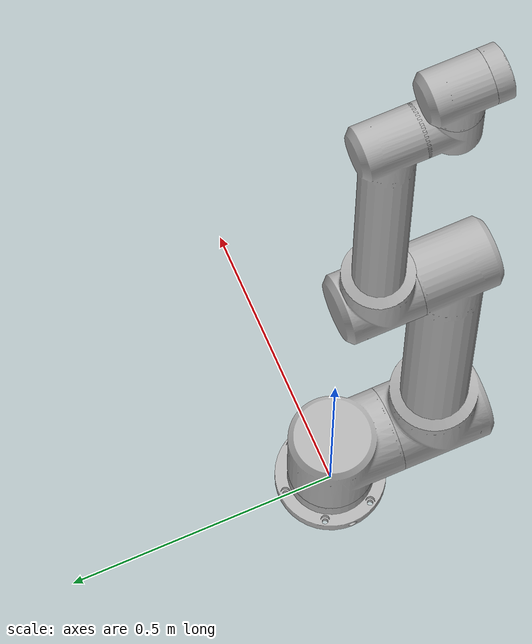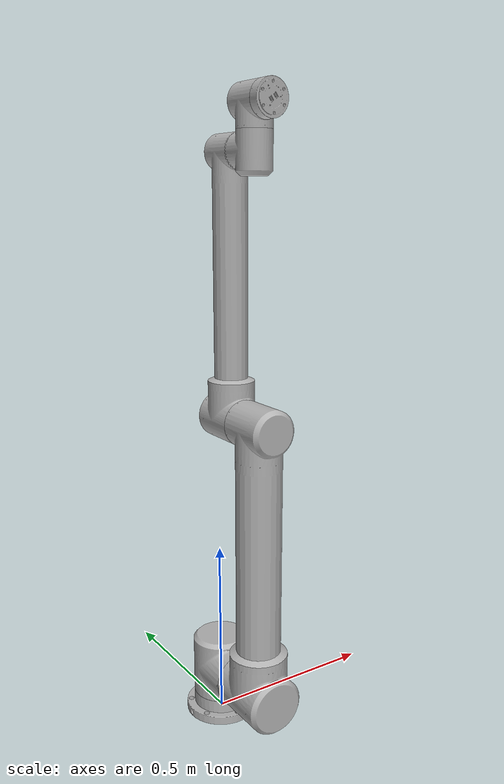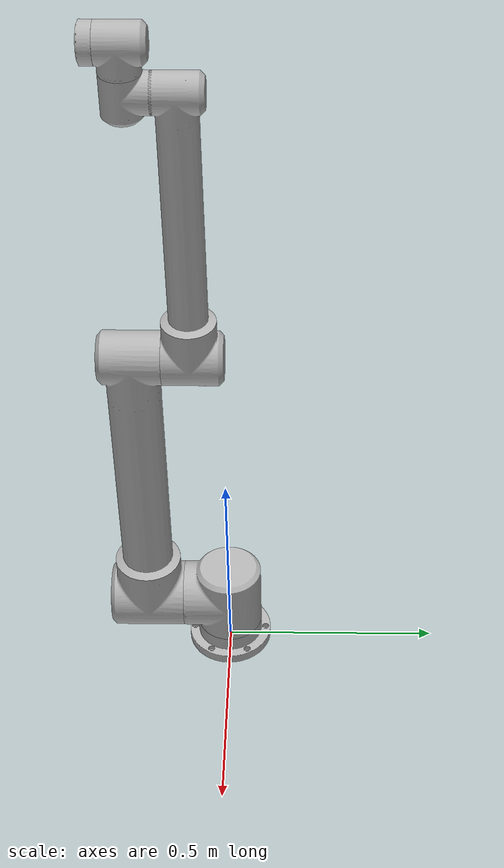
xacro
<?xml version='1.0' encoding='utf-8'?>
<robot xmlns:xacro="http://ros.org/wiki/xacro" name="utra6_1500">

  <xacro:arg name="prefix" default=""/>
  <xacro:arg name="ros_namespace" default="utra6_1500"/>
  <xacro:arg name="limited" default="false"/>
  <xacro:arg name="effort_control" default="false"/>
  <xacro:arg name="attach_to_world" default="true"/>
  <xacro:arg name="add_realsense_d435i" default="false"/>

    <!-- utra6_1500 -->
    <xacro:include filename="$(find arm_description)/urdf/utra6_1500.urdf.xacro" />

    <xacro:if value="$(arg attach_to_world)">
      <link name="world" />
    </xacro:if>

    <joint name="$(arg prefix)world_joint" type="fixed">
      <parent link="world" />
      <child link = "$(arg prefix)base_link" />
      <origin xyz="0 0 0" rpy="0 0 0" />
    </joint>

    <xacro:if value="$(arg limited)">
      <xacro:utra6_1500_urdf prefix="$(arg prefix)"
        joint1_lower_limit="${-2.0*pi+0.02}" joint1_upper_limit="${2.0*pi-0.02}"
        joint2_lower_limit="${-2.0*pi+0.02}" joint2_upper_limit="${2.0*pi-0.02}"
        joint3_lower_limit="${-2.9578+0.02}" joint3_upper_limit="${2.9578-0.02}"
        joint4_lower_limit="${-2.0*pi+0.02}" joint4_upper_limit="${2.0*pi-0.02}"
        joint5_lower_limit="${-2.0*pi+0.02}" joint5_upper_limit="${2.0*pi-0.02}"
        joint6_lower_limit="${-2.0*pi+0.02}" joint6_upper_limit="${2.0*pi-0.02}"/>
    </xacro:if>
    <xacro:unless value="$(arg limited)">
      <xacro:utra6_1500_urdf prefix="$(arg prefix)"/>
    </xacro:unless>

  <xacro:include filename="$(find arm_description)/urdf/transmission.xacro" />

  <xacro:transmission_block joint_name="$(arg prefix)joint1"/>
  <xacro:transmission_block joint_name="$(arg prefix)joint2"/>
  <xacro:transmission_block joint_name="$(arg prefix)joint3"/>
  <xacro:transmission_block joint_name="$(arg prefix)joint4"/>
  <xacro:transmission_block joint_name="$(arg prefix)joint5"/>
  <xacro:transmission_block joint_name="$(arg prefix)joint6"/>

  <xacro:include filename="$(find arm_description)/urdf/utra6_1500_common.gazebo.xacro" />

  <xacro:if value="$(arg add_realsense_d435i)" >
    <link name="$(arg prefix)d435i">
        <inertial>
          <origin xyz="0 0 0" rpy="0 0 0" />
          <mass value="0.00001" />
          <inertia ixx="0" ixy="0" ixz="0" iyy="0" iyz="0" izz="0" />
        </inertial>
        <visual>
          <origin xyz="0 0 0" rpy="0 0 0" />
          <geometry> <mesh filename="package://arm_description/meshes/d435i/d435i.STL" /> </geometry>
          <material name="Silver"> <color rgba="0.7 0.7 0.7 1.0"/> </material>
        </visual>
        <collision>
          <origin xyz="0 0 0" rpy="0 0 0" />
          <geometry> <mesh filename="package://arm_description/meshes/d435i/d435i.STL" /> </geometry>
        </collision>
    </link>
    <joint name="$(arg prefix)d435i_joint" type="fixed">
        <parent link="$(arg prefix)link_6"/>
        <child link="$(arg prefix)d435i"/>
        <origin xyz="0 0 0" rpy="0 -${pi/2} ${pi/2}"/>
    </joint>
  </xacro:if>

</robot>

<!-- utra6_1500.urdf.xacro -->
<robot xmlns:xacro="http://ros.org/wiki/xacro">

  <xacro:macro name="utra6_1500_urdf" params="prefix
    joint1_lower_limit:=${-2.0*pi+0.02} joint1_upper_limit:=${2.0*pi-0.02}
    joint2_lower_limit:=${-2.0*pi+0.02} joint2_upper_limit:=${2.0*pi-0.02}
    joint3_lower_limit:=${-2.9578+0.02} joint3_upper_limit:=${2.9578-0.02}
    joint4_lower_limit:=${-2.0*pi+0.02} joint4_upper_limit:=${2.0*pi-0.02}
    joint5_lower_limit:=${-2.0*pi+0.02} joint5_upper_limit:=${2.0*pi-0.02}
    joint6_lower_limit:=${-2.0*pi+0.02} joint6_upper_limit:=${2.0*pi-0.02}">

    <material name="Black">  <color rgba="0.0 0.0 0.0 1.0"/> </material>
    <material name="Red">    <color rgba="0.8 0.0 0.0 1.0"/> </material>
    <material name="White">  <color rgba="1.0 1.0 1.0 1.0"/> </material>
    <material name="Silver"> <color rgba="0.7 0.7 0.7 1.0"/> </material>

    <xacro:macro name="origin_joint1"> <origin xyz="0 0 0" rpy="0 0 0" /> </xacro:macro>
    <xacro:macro name="origin_joint2"> <origin xyz="0 0 0.1455" rpy="0 0 0" /> </xacro:macro>
    <xacro:macro name="origin_joint3"> <origin xyz="0 0 0.7455" rpy="0 0 0" /> </xacro:macro>
    <xacro:macro name="origin_joint4"> <origin xyz="0 0 0.650" rpy="0 0 0" /> </xacro:macro>
    <xacro:macro name="origin_joint5"> <origin xyz="0 -0.1695 0.1045" rpy="0 0 0" /> </xacro:macro>
    <xacro:macro name="origin_joint6"> <origin xyz="0 -0.0745 0" rpy="${0.5*pi} 0 0" /> </xacro:macro>

    <xacro:macro name="origin_visual_base">   <origin xyz="0 0 0" rpy="0 0 0" /> </xacro:macro>
    <xacro:macro name="origin_visual_link_1"> <origin xyz="0 0 0" rpy="0 0 0" /> </xacro:macro>
    <xacro:macro name="origin_visual_link_2"> <origin xyz="0 0 0" rpy="0 0 0" /> </xacro:macro>
    <xacro:macro name="origin_visual_link_3"> <origin xyz="0 0 0" rpy="0 0 0" /> </xacro:macro>
    <xacro:macro name="origin_visual_link_4"> <origin xyz="0 0 0" rpy="0 0 0" /> </xacro:macro>
    <xacro:macro name="origin_visual_link_5"> <origin xyz="0 0 0" rpy="0 0 0" /> </xacro:macro>
    <xacro:macro name="origin_visual_link_6"> <origin xyz="0 0 0" rpy="0 0 0" /> </xacro:macro>

    <xacro:macro name="origin_inertial_base">   <origin xyz="0 0 0" rpy="0 0 0" /> </xacro:macro>
    <xacro:macro name="origin_inertial_link_1"> <origin xyz="0 0 0" rpy="0 0 0" /> </xacro:macro>
    <xacro:macro name="origin_inertial_link_2"> <origin xyz="0 0 0" rpy="0 0 0" /> </xacro:macro>
    <xacro:macro name="origin_inertial_link_3"> <origin xyz="0 0 0" rpy="0 0 0" /> </xacro:macro>
    <xacro:macro name="origin_inertial_link_4"> <origin xyz="0 0 0" rpy="0 0 0" /> </xacro:macro>
    <xacro:macro name="origin_inertial_link_5"> <origin xyz="0 0 0" rpy="0 0 0" /> </xacro:macro>
    <xacro:macro name="origin_inertial_link_6"> <origin xyz="0 0 0" rpy="0 0 0" /> </xacro:macro>

    <xacro:macro name="inertia_base">   <inertia ixx="0" ixy="0" ixz="0" iyy="0" iyz="0" izz="0" /> </xacro:macro>
    <xacro:macro name="inertia_link_1"> <inertia ixx="0" ixy="0" ixz="0" iyy="0" iyz="0" izz="0" /> </xacro:macro>
    <xacro:macro name="inertia_link_2"> <inertia ixx="0" ixy="0" ixz="0" iyy="0" iyz="0" izz="0" /> </xacro:macro>
    <xacro:macro name="inertia_link_3"> <inertia ixx="0" ixy="0" ixz="0" iyy="0" iyz="0" izz="0" /> </xacro:macro>
    <xacro:macro name="inertia_link_4"> <inertia ixx="0" ixy="0" ixz="0" iyy="0" iyz="0" izz="0" /> </xacro:macro>
    <xacro:macro name="inertia_link_5"> <inertia ixx="0" ixy="0" ixz="0" iyy="0" iyz="0" izz="0" /> </xacro:macro>
    <xacro:macro name="inertia_link_6"> <inertia ixx="0" ixy="0" ixz="0" iyy="0" iyz="0" izz="0" /> </xacro:macro>

    <xacro:property name="mass_base"   value="2.0411199" />
    <xacro:property name="mass_link_1" value="7.9857319" />
    <xacro:property name="mass_link_2" value="14.769921" />
    <xacro:property name="mass_link_3" value="4.6213013" />
    <xacro:property name="mass_link_4" value="1.5706544" />
    <xacro:property name="mass_link_5" value="1.5706544" />
    <xacro:property name="mass_link_6" value="0.2216098" />

    <xacro:property name="effort_joint1" value="450"/>
    <xacro:property name="effort_joint2" value="450"/>
    <xacro:property name="effort_joint3" value="217"/>
    <xacro:property name="effort_joint4" value="70" />
    <xacro:property name="effort_joint5" value="70" />
    <xacro:property name="effort_joint6" value="70" />

    <xacro:property name="speed_joint1" value="1.5" />
    <xacro:property name="speed_joint2" value="1.5" />
    <xacro:property name="speed_joint3" value="2.0" />
    <xacro:property name="speed_joint4" value="3.0" />
    <xacro:property name="speed_joint5" value="3.0" />
    <xacro:property name="speed_joint6" value="3.0" />

    <xacro:property name="damping_joint1" value="3" />
    <xacro:property name="damping_joint2" value="3" />
    <xacro:property name="damping_joint3" value="3" />
    <xacro:property name="damping_joint4" value="3" />
    <xacro:property name="damping_joint5" value="3" />
    <xacro:property name="damping_joint6" value="3" />

    <xacro:property name="friction_joint1" value="2" />
    <xacro:property name="friction_joint2" value="2" />
    <xacro:property name="friction_joint3" value="2" />
    <xacro:property name="friction_joint4" value="2" />
    <xacro:property name="friction_joint5" value="2" />
    <xacro:property name="friction_joint6" value="2" />

    <link name="${prefix}base_link">
      <inertial>
        <xacro:origin_inertial_base/>
        <mass value="${mass_base}" />
        <xacro:inertia_base/>
      </inertial>
      <visual>
        <xacro:origin_visual_base/>
        <geometry> <mesh filename="package://arm_description/meshes/utra6_1500/visual/base.STL" /> </geometry>
        <material name="Silver" />
      </visual>
      <collision>
        <xacro:origin_visual_base/>
        <geometry> <mesh filename="package://arm_description/meshes/utra6_1500/visual/base.STL" /> </geometry>
      </collision>
    </link>

    <joint name="${prefix}joint1" type="revolute">
      <xacro:origin_joint1/>
      <parent link="${prefix}base_link" />
      <child link="${prefix}link_1" />
      <axis xyz="0 0 1" />
      <limit lower="${joint1_lower_limit}" upper="${joint1_upper_limit}" effort="${effort_joint1}" velocity="${speed_joint1}" />
      <dynamics damping="${damping_joint1}" friction="${friction_joint1}" />
    </joint>

    <link name="${prefix}link_1">
      <inertial>
        <xacro:origin_inertial_link_1/>
        <mass value="${mass_link_1}" />
        <xacro:inertia_link_1/>
      </inertial>
      <visual>
        <xacro:origin_visual_link_1/>
        <geometry> <mesh filename="package://arm_description/meshes/utra6_1500/visual/link1.STL" /> </geometry>
        <material name="Silver" />
      </visual>
      <collision>
        <xacro:origin_visual_link_1/>
        <geometry> <mesh filename="package://arm_description/meshes/utra6_1500/visual/link1.STL" /> </geometry>
      </collision>
    </link>

    <joint name="${prefix}joint2" type="revolute">
      <xacro:origin_joint2/>
      <parent link="${prefix}link_1" />
      <child link="${prefix}link_2" />
      <axis xyz="0 -1 0" />
      <limit lower="${joint2_lower_limit}" upper="${joint2_upper_limit}" effort="${effort_joint2}" velocity="${speed_joint2}" />
      <dynamics damping="${damping_joint2}" friction="${friction_joint2}" />
    </joint>

    <link name="${prefix}link_2">
      <inertial>
        <xacro:origin_inertial_link_2/>
        <mass value="${mass_link_2}" />
        <xacro:inertia_link_2/>
      </inertial>
      <visual>
        <xacro:origin_visual_link_2/>
        <geometry> <mesh filename="package://arm_description/meshes/utra6_1500/visual/link2.STL" /> </geometry>
        <material name="Silver" />
      </visual>
      <collision>
        <xacro:origin_visual_link_2/>
        <geometry> <mesh filename="package://arm_description/meshes/utra6_1500/visual/link2.STL" /> </geometry>
      </collision>
    </link>

    <joint name="${prefix}joint3" type="revolute">
      <xacro:origin_joint3/>
      <parent link="${prefix}link_2" />
      <child link="${prefix}link_3" />
      <axis xyz="0 1 0" />
      <limit lower="${joint3_lower_limit}" upper="${joint3_upper_limit}" effort="${effort_joint3}" velocity="${speed_joint3}" />
      <dynamics damping="${damping_joint3}" friction="${friction_joint3}" />
    </joint>

    <link name="${prefix}link_3">
      <inertial>
        <xacro:origin_inertial_link_3/>
        <mass value="${mass_link_3}" />
        <xacro:inertia_link_3/>
      </inertial>
      <visual>
        <xacro:origin_visual_link_3/>
        <geometry> <mesh filename="package://arm_description/meshes/utra6_1500/visual/link3.STL" /> </geometry>
        <material name="Silver" />
      </visual>
      <collision>
        <xacro:origin_visual_link_3/>
        <geometry> <mesh filename="package://arm_description/meshes/utra6_1500/visual/link3.STL" /> </geometry>
      </collision>
    </link>

    <joint name="${prefix}joint4" type="revolute">
      <xacro:origin_joint4/>
      <parent link="${prefix}link_3" />
      <child link="${prefix}link_4" />
      <axis xyz="0 -1 0" />
      <limit lower="${joint4_lower_limit}" upper="${joint4_upper_limit}" effort="${effort_joint4}" velocity="${speed_joint4}" />
      <dynamics damping="${damping_joint4}" friction="${friction_joint4}" />
    </joint>

    <link name="${prefix}link_4">
      <inertial>
        <xacro:origin_inertial_link_4/>
        <mass value="${mass_link_4}" />
        <xacro:inertia_link_4/>
      </inertial>
      <visual>
        <xacro:origin_visual_link_4/>
        <geometry> <mesh filename="package://arm_description/meshes/utra6_1500/visual/link4.STL" /> </geometry>
        <material name="Silver" />
      </visual>
      <collision>
        <xacro:origin_visual_link_4/>
        <geometry> <mesh filename="package://arm_description/meshes/utra6_1500/visual/link4.STL" /> </geometry>
      </collision>
    </link>

    <joint name="${prefix}joint5" type="revolute">
      <xacro:origin_joint5/>
      <parent link="${prefix}link_4" />
      <child link="${prefix}link_5" />
      <axis xyz="0 0 1" />
      <limit lower="${joint5_lower_limit}" upper="${joint5_upper_limit}" effort="${effort_joint5}" velocity="${speed_joint5}" />
      <dynamics damping="${damping_joint5}" friction="${friction_joint5}" />
    </joint>

    <link name="${prefix}link_5">
      <inertial>
        <mass value="${mass_link_5}" />
        <xacro:origin_inertial_link_5/>
        <xacro:inertia_link_5/>
      </inertial>
      <visual>
        <xacro:origin_visual_link_5/>
        <geometry> <mesh filename="package://arm_description/meshes/utra6_1500/visual/link5.STL" /> </geometry>
        <material name="Silver" />
      </visual>
      <collision>
        <xacro:origin_visual_link_5/>
        <geometry> <mesh filename="package://arm_description/meshes/utra6_1500/visual/link5.STL" /> </geometry>
      </collision>
    </link>

    <joint name="${prefix}joint6" type="revolute">
      <xacro:origin_joint6/>
      <parent link="${prefix}link_5" />
      <child link="${prefix}link_6" />
      <axis xyz="0 0 1" />
      <limit lower="${joint6_lower_limit}" upper="${joint6_upper_limit}" effort="${effort_joint6}" velocity="${speed_joint6}" />
      <dynamics damping="${damping_joint6}" friction="${friction_joint6}" />
    </joint>

    <link name="${prefix}link_6">
      <inertial>
        <mass value="${mass_link_6}" />
        <xacro:origin_inertial_link_6/>
        <xacro:inertia_link_6/>
      </inertial>
      <visual>
        <xacro:origin_visual_link_6/>
        <geometry> <mesh filename="package://arm_description/meshes/utra6_1500/visual/link6.STL" /> </geometry>
        <material name="Silver" />
      </visual>
      <collision>
        <xacro:origin_visual_link_6/>
        <geometry> <mesh filename="package://arm_description/meshes/utra6_1500/visual/link6.STL" /> </geometry>
      </collision>
    </link>

  </xacro:macro>
</robot>
